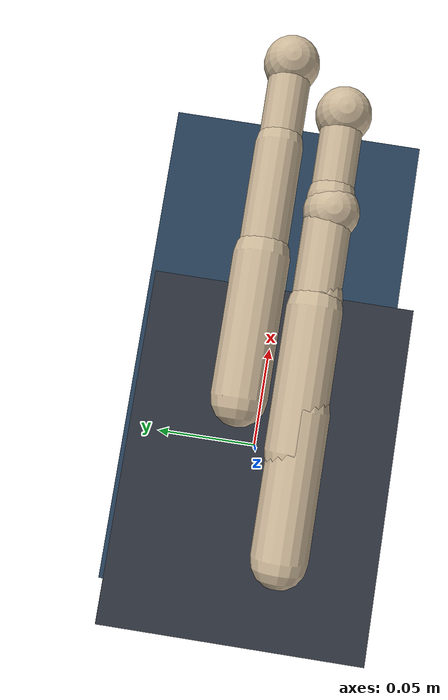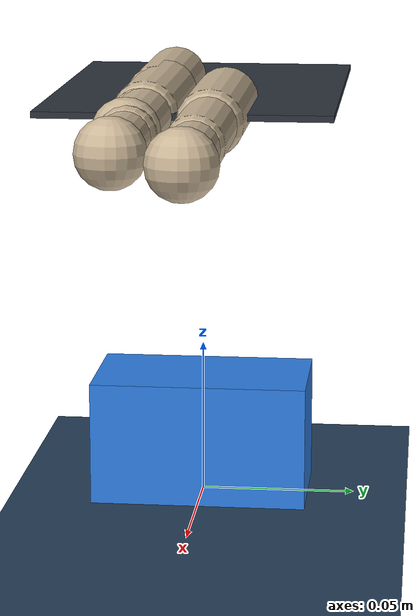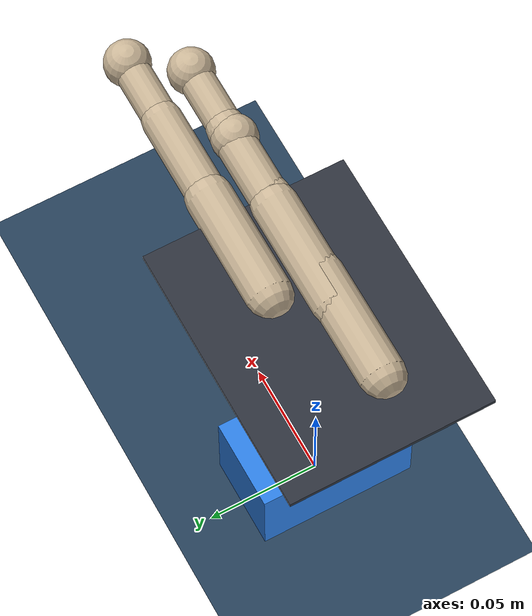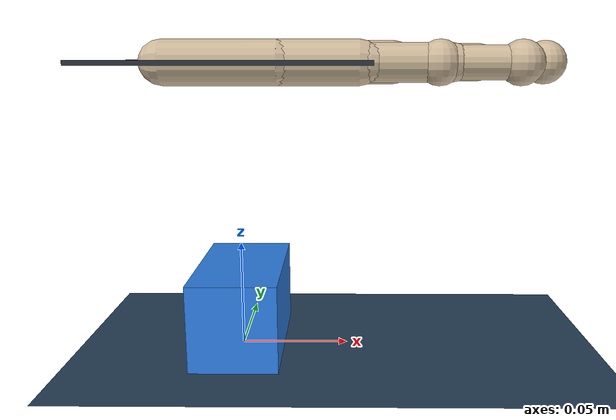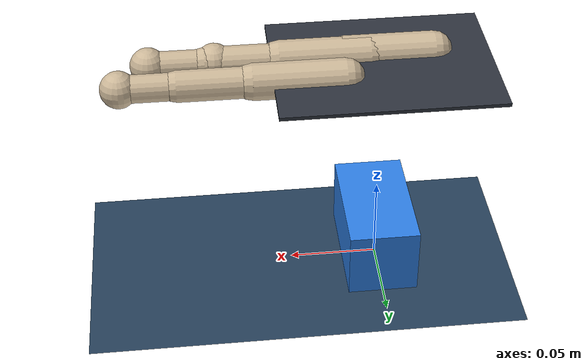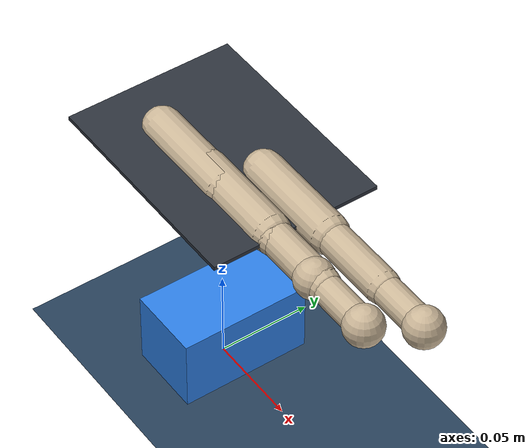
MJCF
<mujoco model="scene_prism3_tn0d0000p0d0159p0d0000_ip0d0210n0d0204p0d0000_mp0d0053p0d0187p0d0000">
  <compiler angle="radian" autolimits="true" />
  <option timestep="0.002" gravity="0 0 -9.81" integrator="implicitfast" />
  <visual>
    <headlight ambient=".4 .4 .4" diffuse=".8 .8 .8" specular="0.1 0.1 0.1" />
    <map znear=".01" />
    <quality shadowsize="2048" />
    <global elevation="-15" />
  </visual>
  <default>
    <geom friction="1.8 0.15 0.01" solref="0.006 1" solimp="0.97 0.995 0.0005" />
    <motor ctrlrange="-1 1" ctrllimited="true" />
    <default class="pose">
      <joint damping="2.0" armature="0.01" />
      <position kp="4000" kv="100" forcerange="-1000 1000" />
    </default>
    <default class="ctrl">
      <joint damping="0.5" armature="0.001" />
      <position kp="30" kv="0.5" gear="1" forcerange="-10 10" ctrlrange="-1 1" />
    </default>
  </default>
  <asset>
    <texture type="skybox" builtin="gradient" rgb1="0.3 0.5 0.7" rgb2="0 0 0" width="512" height="3072" />
    <texture type="2d" name="groundplane" builtin="checker" mark="edge" rgb1="0.2 0.3 0.4" rgb2="0.1 0.2 0.3" markrgb="0.8 0.8 0.8" width="300" height="300" />
    <material name="groundplane" texture="groundplane" texuniform="true" texrepeat="5 5" reflectance="0.2" />
    <texture name="grid" type="2d" builtin="checker" rgb1="0.15 0.15 0.15" rgb2="0.25 0.25 0.25" width="256" height="256" />
    <material name="table_mat" texture="grid" texrepeat="3 3" reflectance="0.2" />
    <material name="palm_mat" rgba="0.18 0.2 0.24 1" />
    <material name="finger_mat" rgba="0.8 0.72 0.6 1" />
    <material name="object_mat" rgba="0.18 0.5 0.9 1" />
  </asset>
  <worldbody>
    <light pos="0 0 1.5" dir="0 0 -1" directional="true" diffuse=".6 .6 .6" specular=".2 .2 .2" />
    <light pos="0.5 0.5 1.0" dir="-1 -1 -1" directional="true" diffuse=".4 .4 .4" specular=".1 .1 .1" />
    <geom name="floor" type="plane" size="1.5 1.5 0.1" material="groundplane" />
    <body name="cube" pos="0.000000 0.000000 0.020000">
      <freejoint />
      <geom type="box" size="0.020000 0.035000 0.020000" density="500" material="object_mat" friction="2.4 0.2 0.02" />
    </body>
    <body gravcomp="1" name="palm_pose" pos="0 0 0.134">
      <joint class="pose" name="palm_px" type="slide" axis="1 0 0" range="-0.20 0.20" />
      <joint class="pose" name="palm_py" type="slide" axis="0 1 0" range="-0.20 0.20" />
      <joint class="pose" name="palm_pz" type="slide" axis="0 0 1" range="-0.15 0.35" />
      <joint class="pose" name="palm_rx" type="hinge" axis="1 0 0" range="-1.57 1.57" />
      <joint class="pose" name="palm_ry" type="hinge" axis="0 1 0" range="-1.57 1.57" />
      <joint class="pose" name="palm_rz" type="hinge" axis="0 0 1" range="-3.14 3.14" />
      <geom type="box" size="0.06 0.045 0.001" material="palm_mat" />
      <body name="thumb_mount" pos="-0.030047 -0.012058 0">
        <inertial pos="0 0 0" mass="0.001" diaginertia="1e-6 1e-6 1e-6" />
        <body name="thumb_yaw_frame">
          <inertial pos="0 0 0" mass="0.001" diaginertia="1e-6 1e-6 1e-6" />
          <joint class="ctrl" name="thumb_yaw" type="hinge" axis="1 0 0" range="-1.1 1.1" />
          <body name="thumb_mcp_frame">
            <joint class="ctrl" name="thumb_mcp" type="hinge" axis="0 1 0" range="0 3.14" />
            <geom type="capsule" fromto="0 0 0 0.05 0 0" size="0.010" material="finger_mat" />
            <body name="thumb_len_frame" pos="0.05 0 0">
              <geom type="capsule" fromto="0 0 0 0.04 0 0" size="0.0085" material="finger_mat" />
              <body name="thumb_pip_frame" pos="0.04 0 0">
                <joint class="ctrl" name="thumb_pip" type="hinge" axis="0 1 0" range="-1.2 0.5" />
                <geom type="capsule" fromto="0 0 0 0.03 0 0" size="0.0075" material="finger_mat" />
                <body name="thumb_tip" pos="0.03 0 0">
                  <geom type="sphere" size="0.010" material="finger_mat" friction="2.4 0.2 0.02" />
                  <geom type="sphere" pos="0 0.004 0" size="0.005" material="finger_mat" friction="2.4 0.2 0.02" />
                  <geom type="sphere" pos="0 -0.004 0" size="0.005" material="finger_mat" friction="2.4 0.2 0.02" />
                </body>
              </body>
            </body>
          </body>
        </body>
      </body>
      <body name="index_mount" pos="0.021025 0.009623 0">
        <inertial pos="0 0 0" mass="0.001" diaginertia="1e-6 1e-6 1e-6" />
        <body name="index_yaw_frame">
          <inertial pos="0 0 0" mass="0.001" diaginertia="1e-6 1e-6 1e-6" />
          <joint class="ctrl" name="index_yaw" type="hinge" axis="1 0 0" range="-1.1 1.1" />
          <body name="index_mcp_frame">
            <joint class="ctrl" name="index_mcp" type="hinge" axis="0 1 0" range="0 2.5" />
            <geom type="capsule" fromto="0 0 0 0.05 0 0" size="0.010" material="finger_mat" />
            <body name="index_len_frame" pos="0.05 0 0">
              <geom type="capsule" fromto="0 0 0 0.04 0 0" size="0.0085" material="finger_mat" />
              <body name="index_pip_frame" pos="0.04 0 0">
                <joint class="ctrl" name="index_pip" type="hinge" axis="0 1 0" range="-1.2 1.57" />
                <geom type="capsule" fromto="0 0 0 0.03 0 0" size="0.0075" material="finger_mat" />
                <body name="index_tip" pos="0.03 0 0">
                  <geom type="sphere" size="0.010" material="finger_mat" friction="2.4 0.2 0.02" />
                  <geom type="sphere" pos="0 0.004 0" size="0.005" material="finger_mat" friction="2.4 0.2 0.02" />
                  <geom type="sphere" pos="0 -0.004 0" size="0.005" material="finger_mat" friction="2.4 0.2 0.02" />
                </body>
              </body>
            </body>
          </body>
        </body>
      </body>
      <body name="middle_mount" pos="0.005322 -0.011275 0">
        <inertial pos="0 0 0" mass="0.001" diaginertia="1e-6 1e-6 1e-6" />
        <body name="middle_yaw_frame">
          <inertial pos="0 0 0" mass="0.001" diaginertia="1e-6 1e-6 1e-6" />
          <joint class="ctrl" name="middle_yaw" type="hinge" axis="1 0 0" range="-1.1 1.1" />
          <body name="middle_mcp_frame">
            <joint class="ctrl" name="middle_mcp" type="hinge" axis="0 1 0" range="0 2.5" />
            <geom type="capsule" fromto="0 0 0 0.05 0 0" size="0.010" material="finger_mat" />
            <body name="middle_len_frame" pos="0.05 0 0">
              <geom type="capsule" fromto="0 0 0 0.04 0 0" size="0.0085" material="finger_mat" />
              <body name="middle_pip_frame" pos="0.04 0 0">
                <joint class="ctrl" name="middle_pip" type="hinge" axis="0 1 0" range="-1.2 1.57" />
                <geom type="capsule" fromto="0 0 0 0.03 0 0" size="0.0075" material="finger_mat" />
                <body name="middle_tip" pos="0.03 0 0">
                  <geom type="sphere" size="0.010" material="finger_mat" friction="2.4 0.2 0.02" />
                  <geom type="sphere" pos="0 0.004 0" size="0.005" material="finger_mat" friction="2.4 0.2 0.02" />
                  <geom type="sphere" pos="0 -0.004 0" size="0.005" material="finger_mat" friction="2.4 0.2 0.02" />
                </body>
              </body>
            </body>
          </body>
        </body>
      </body>
    </body>
  </worldbody>
  <actuator>
    <position class="pose" name="a_palm_px" joint="palm_px" ctrlrange="-0.20 0.20" />
    <position class="pose" name="a_palm_py" joint="palm_py" ctrlrange="-0.20 0.20" />
    <position class="pose" name="a_palm_pz" joint="palm_pz" ctrlrange="-0.15 0.35" />
    <position class="pose" name="a_palm_rx" joint="palm_rx" ctrlrange="-1.57 1.57" />
    <position class="pose" name="a_palm_ry" joint="palm_ry" ctrlrange="-1.57 1.57" />
    <position class="pose" name="a_palm_rz" joint="palm_rz" ctrlrange="-3.14 3.14" />
    <position class="ctrl" name="a_thumb_yaw" joint="thumb_yaw" ctrlrange="-1.1 1.1" />
    <position class="ctrl" name="a_thumb_mcp" joint="thumb_mcp" ctrlrange="0 3.14" />
    <position class="ctrl" name="a_thumb_pip" joint="thumb_pip" ctrlrange="-1.2 0.5" />
    <position class="ctrl" name="a_index_yaw" joint="index_yaw" ctrlrange="-1.1 1.1" />
    <position class="ctrl" name="a_index_mcp" joint="index_mcp" ctrlrange="0 2.5" />
    <position class="ctrl" name="a_index_pip" joint="index_pip" ctrlrange="-1.2 1.57" />
    <position class="ctrl" name="a_middle_yaw" joint="middle_yaw" ctrlrange="-1.1 1.1" />
    <position class="ctrl" name="a_middle_mcp" joint="middle_mcp" ctrlrange="0 2.5" />
    <position class="ctrl" name="a_middle_pip" joint="middle_pip" ctrlrange="-1.2 1.57" />
  </actuator>
  <keyframe>
    <key name="open" qpos="&#10;        0 0 0.02 1 0 0 0 0.02 0 0 0 0 0 0 2 -0.707 0 1.25 1 0 1.25 1&#10;      " ctrl="&#10;        0.02 0 0 0 0 0 0 2 -0.707 0 1.25 1 0 1.25 1&#10;      " />
    <key name="foundational" qpos="&#10;        0.0126766521 0.002553650765 0.02133136862 0.9989218493 -0.01507318616 -0.01196005044 -0.04224802092 0.01979752918 -0.0001204702694 -0.0003152648939 -9.064782713e-06 3.102478168e-05 1.066649087e-05 0.09524477915 1.824147742 -0.992202963 -0.03899140839 1.363727593 0.9122239049 -0.01271777645 1.179118945 1.212787763&#10;      " ctrl="&#10;        0.02 0 0 0 0 0 0.0866328403 1.27190578 -1.062763624 -0.06422771721 1.503924752 0.9417088641 0.02164145556 1.36297365 1.245125179&#10;      " />
  </keyframe>
</mujoco>
